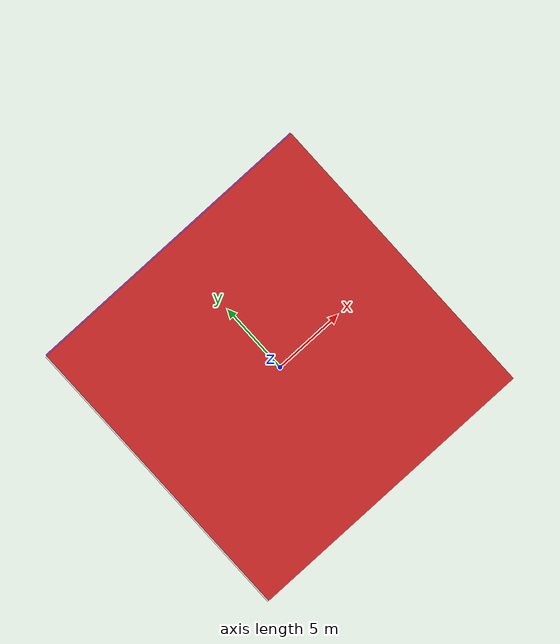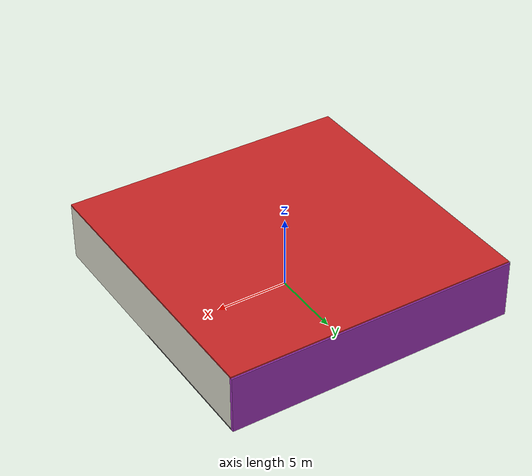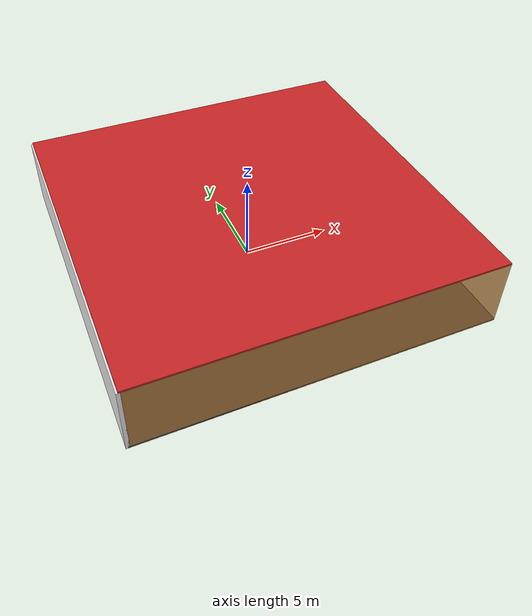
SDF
<sdf version="1.4">
 <world name="default">
  <physics type="ode">
   <max_step_size>0.001</max_step_size>
   <real_time_factor>1</real_time_factor>
   <real_time_update_rate>1000</real_time_update_rate>
   <gravity>0 0 -9.8</gravity>
  </physics>
  <scene><ambient>0.4 0.4 0.4 1</ambient><background>0.7 0.7 0.7 1</background><shadows>1</shadows></scene>
  <model name="Surrounding">
   <static>1</static>
   <link name="Ceiling">
    <collision name="Ceiling_Collision"><geometry><box><size>20 20 0.1</size></box></geometry></collision>
    <visual name="Ceiling_Visual">
     <geometry><box><size>20 20 0.1</size></box></geometry>
     <material>
      <script><uri>file://media/materials/scripts/gazebo.material</uri><name>Gazebo/RedBright</name></script>
     </material>
    </visual>
    <pose>0 0 4.05 0 0 0</pose>
   </link>
   <link name="Wall_South">
    <collision name="Wall_South_Collision">
     <geometry><box><size>20 0 4</size></box></geometry>
     <pose>0 0 2 0 -0 0</pose>
    </collision>
    <visual name="Wall_South_Visual">
     <pose>0 0 2 0 -0 0</pose>
     <geometry><box><size>20 0 4</size></box></geometry>
     <material>
      <script>
       <uri>file://media/materials/scripts/gazebo.material</uri>
       <name>Gazebo/OrangeTransparent</name>
      </script>
     </material>
    </visual>
    <velocity_decay><linear>0</linear><angular>0</angular></velocity_decay>
    <pose>0 -10 0 0 -0 0</pose>
   </link>
   <link name="Wall_East">
    <collision name="Wall_21_Collision">
     <geometry><box><size>20 0 4</size></box></geometry>
     <pose>0 0 2 0 -0 0</pose>
    </collision>
    <visual name="Wall_21_Visual">
     <pose>0 0 2 0 -0 0</pose>
     <geometry><box><size>20 0 4</size></box></geometry>
     <material>
      <script><uri>file://media/materials/scripts/gazebo.material</uri><name>Gazebo/PaintedWall</name></script>
     </material>
    </visual>
    <velocity_decay><linear>0</linear><angular>0</angular></velocity_decay>
    <pose>10 0 0 0 -0 1.5708</pose>
   </link>
   <link name="Wall_North">
    <collision name="Wall_22_Collision">
     <geometry><box><size>20 0.2 4</size></box></geometry>
     <pose>0 0 2 0 -0 0</pose>
    </collision>
    <visual name="Wall_22_Visual">
     <pose>0 0 2 0 -0 0</pose>
     <geometry><box><size>20 0.2 4</size></box></geometry>
     <material>
      <script><uri>file://media/materials/scripts/gazebo.material</uri><name>Gazebo/Purple</name></script>
     </material>
    </visual>
    <velocity_decay><linear>0</linear><angular>0</angular></velocity_decay>
    <pose>0 10 0 0 -0 0</pose>
   </link>
   <link name="Wall_West">
    <collision name="Wall_23_Collision">
     <geometry><box><size>20 0.2 4</size></box></geometry>
     <pose>0 0 2 0 -0 0</pose>
    </collision>
    <visual name="Wall_23_Visual">
     <pose>0 0 2 0 -0 0</pose>
     <geometry><box><size>20 0.2 4</size></box></geometry>
     <material>
      <script><uri>file://media/materials/scripts/gazebo.material</uri><name>Gazebo/White</name></script>
     </material>
    </visual>
    <velocity_decay><linear>0</linear><angular>0</angular></velocity_decay>
    <pose>-10 0 0 0 0 -1.5708</pose>
   </link>
   <link name="Ground_link">
    <collision name="collision">
     <pose>0 0 .05 0 -0 0</pose>
     <geometry><box><size>20 20 0.1</size></box></geometry>
    </collision>
    <visual name="visual">
     <pose>0 0 .05 0 -0 0</pose>
     <geometry><box><size>20 20 0.1</size></box></geometry>
     <material>
      <script><uri>file://media/materials/scripts/gazebo.material</uri><name>Gazebo/DarkGrey</name></script>
     </material>
    </visual>
   </link>
   <static>1</static>
  </model>
  <spherical_coordinates>
   <surface_model>EARTH_WGS84</surface_model>
   <latitude_deg>0</latitude_deg>
   <longitude_deg>0</longitude_deg>
   <elevation>0</elevation>
   <heading_deg>0</heading_deg>
  </spherical_coordinates>
  <light name="lightball_0" type="diffuse">
   <diffuse>0.8 0.8 0.8 1</diffuse>
   <specular>0.2 0.2 0.2 1</specular>
   <attenuation>
    <range>100</range>
    <constant>0.7</constant>
    <linear>0.01</linear>
    <quadratic>0.001</quadratic>
   </attenuation>
   <direction>-0.5 0.1 -0.9</direction>
   <pose>-9.16285434121 -9.0895815584 2.36860289026 0 0 0</pose>
  </light>
  <light name="lightball_1" type="diffuse">
   <diffuse>0.8 0.8 0.8 1</diffuse>
   <specular>0.2 0.2 0.2 1</specular>
   <attenuation>
    <range>100</range>
    <constant>0.7</constant>
    <linear>0.01</linear>
    <quadratic>0.001</quadratic>
   </attenuation>
   <direction>-0.5 0.1 -0.9</direction>
   <pose>6.13870791163 -3.69742155114 2.09159032625 0 0 0</pose>
  </light>
  <light name="lightball_2" type="diffuse">
   <diffuse>0.8 0.8 0.8 1</diffuse>
   <specular>0.2 0.2 0.2 1</specular>
   <attenuation>
    <range>100</range>
    <constant>0.7</constant>
    <linear>0.01</linear>
    <quadratic>0.001</quadratic>
   </attenuation>
   <direction>-0.5 0.1 -0.9</direction>
   <pose>8.72894829727 2.40491247227 1.30167994849 0 0 0</pose>
  </light>
  <light name="lightball_3" type="diffuse">
   <diffuse>0.8 0.8 0.8 1</diffuse>
   <specular>0.2 0.2 0.2 1</specular>
   <attenuation>
    <range>100</range>
    <constant>0.7</constant>
    <linear>0.01</linear>
    <quadratic>0.001</quadratic>
   </attenuation>
   <direction>-0.5 0.1 -0.9</direction>
   <pose>-9.88940310592 9.77881982277 0.852539894397 0 0 0</pose>
  </light>
  <light name="lightball_4" type="diffuse">
   <diffuse>0.8 0.8 0.8 1</diffuse>
   <specular>0.2 0.2 0.2 1</specular>
   <attenuation>
    <range>100</range>
    <constant>0.7</constant>
    <linear>0.01</linear>
    <quadratic>0.001</quadratic>
   </attenuation>
   <direction>-0.5 0.1 -0.9</direction>
   <pose>6.06868569275 -5.1615377861 2.21173114211 0 0 0</pose>
  </light>
  <light name="lightball_5" type="diffuse">
   <diffuse>0.8 0.8 0.8 1</diffuse>
   <specular>0.2 0.2 0.2 1</specular>
   <attenuation>
    <range>100</range>
    <constant>0.7</constant>
    <linear>0.01</linear>
    <quadratic>0.001</quadratic>
   </attenuation>
   <direction>-0.5 0.1 -0.9</direction>
   <pose>6.71428040617 -5.02278844899 3.44482134468 0 0 0</pose>
  </light>
  <light name="lightball_6" type="diffuse">
   <diffuse>0.8 0.8 0.8 1</diffuse>
   <specular>0.2 0.2 0.2 1</specular>
   <attenuation>
    <range>100</range>
    <constant>0.7</constant>
    <linear>0.01</linear>
    <quadratic>0.001</quadratic>
   </attenuation>
   <direction>-0.5 0.1 -0.9</direction>
   <pose>2.77001319892 -8.0215077229 1.56528639456 0 0 0</pose>
  </light>
  <light name="lightball_7" type="diffuse">
   <diffuse>0.8 0.8 0.8 1</diffuse>
   <specular>0.2 0.2 0.2 1</specular>
   <attenuation>
    <range>100</range>
    <constant>0.7</constant>
    <linear>0.01</linear>
    <quadratic>0.001</quadratic>
   </attenuation>
   <direction>-0.5 0.1 -0.9</direction>
   <pose>7.80776950172 5.36849751408 2.62302124107 0 0 0</pose>
  </light>
  <light name="lightball_8" type="diffuse">
   <diffuse>0.8 0.8 0.8 1</diffuse>
   <specular>0.2 0.2 0.2 1</specular>
   <attenuation>
    <range>100</range>
    <constant>0.7</constant>
    <linear>0.01</linear>
    <quadratic>0.001</quadratic>
   </attenuation>
   <direction>-0.5 0.1 -0.9</direction>
   <pose>3.22852272107 -6.81167428854 1.52780689258 0 0 0</pose>
  </light>
  <light name="lightball_9" type="diffuse">
   <diffuse>0.8 0.8 0.8 1</diffuse>
   <specular>0.2 0.2 0.2 1</specular>
   <attenuation>
    <range>100</range>
    <constant>0.7</constant>
    <linear>0.01</linear>
    <quadratic>0.001</quadratic>
   </attenuation>
   <direction>-0.5 0.1 -0.9</direction>
   <pose>0.46052266592 2.24406541347 3.42379276925 0 0 0</pose>
  </light>
  <light name="lightball_10" type="diffuse">
   <diffuse>0.8 0.8 0.8 1</diffuse>
   <specular>0.2 0.2 0.2 1</specular>
   <attenuation>
    <range>100</range>
    <constant>0.7</constant>
    <linear>0.01</linear>
    <quadratic>0.001</quadratic>
   </attenuation>
   <direction>-0.5 0.1 -0.9</direction>
   <pose>7.59696812038 4.48064729353 1.02245816441 0 0 0</pose>
  </light>
  <include><uri>model://cabinet</uri><pose>-8.00389118373 -6.68523945786 0 0 0 0.0978773390943</pose></include>
  <include><uri>model://cabinet</uri><pose>-4.60447243098 8.50575704079 0 0 0 2.34922651001</pose></include>
  <include><uri>model://cabinet</uri><pose>2.4375601008 1.04293827841 0 0 0 1.94777154823</pose></include>
  <include><uri>model://table</uri><pose>6.80413848325 8.38549768178 0 0 0 0.998644448284</pose></include>
 </world>
</sdf>

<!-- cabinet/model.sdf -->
<sdf version="1.5">
  <model name="cabinet">
    <static>true</static>
    <link name="cabinet_bottom_plate">
      <inertial>
        <pose>0 0 -1 0 0 0</pose>
        <inertia>
          <ixx>2.050000</ixx>
          <ixy>0</ixy>
          <ixz>0</ixz>
          <iyy>2.050000</iyy>
          <iyz>0</iyz>
          <izz>2.050000</izz>
        </inertia>
        <mass>25.000000</mass>
      </inertial>
      <collision name="cabinet_bottom_plate_geom">
        <pose>0 0 0.010000 0 0 0</pose>
        <geometry>
          <box>
            <size>0.450000 0.450000 0.020000</size>
          </box>
        </geometry>
      </collision>
      <visual name="cabinet_bottom_plate_geom_visual">
        <pose>0 0 0.010000 0 0 0</pose>
        <geometry>
          <box>
            <size>0.450000 0.450000 0.020000</size>
          </box>
        </geometry>
        <material>
          <script>
            <uri>model://media/materials/scripts/gazebo.material</uri>
            <name>Gazebo/Wood</name>
          </script>
        </material>
      </visual>
      <collision name="cabinet_bottom_plate_geom_cabinet_back_plate">
        <pose>0.235000 0 0.510000 0 0 0</pose>
        <geometry>
          <box>
            <size>0.020000 0.450000 1.020000</size>
          </box>
        </geometry>
      </collision>
      <visual name="cabinet_bottom_plate_geom_cabinet_back_plate_visual">
        <pose>0.235000 0 0.510000 0 0 0</pose>
        <geometry>
          <box>
            <size>0.020000 0.450000 1.020000</size>
          </box>
        </geometry>
        <material>
          <script>
            <uri>model://media/materials/scripts/gazebo.material</uri>
            <name>Gazebo/Wood</name>
          </script>
        </material>
      </visual>
      <collision name="cabinet_bottom_plate_geom_cabinet_left_plate">
        <pose>0 0.235000 0.510000 0 0 0</pose>
        <geometry>
          <box>
            <size>0.450000 0.020000 1.020000</size>
          </box>
        </geometry>
      </collision>
      <visual name="cabinet_bottom_plate_geom_cabinet_left_plate_visual">
        <pose>0 0.235000 0.510000 0 0 0</pose>
        <geometry>
          <box>
            <size>0.450000 0.020000 1.020000</size>
          </box>
        </geometry>
        <material>
          <script>
            <uri>model://media/materials/scripts/gazebo.material</uri>
            <name>Gazebo/Wood</name>
          </script>
        </material>
      </visual>
      <collision name="cabinet_bottom_plate_geom_cabinet_middle_plate">
        <pose>0 0 0.510000 0 0 0</pose>
        <geometry>
          <box>
            <size>0.450000 0.450000 0.020000</size>
          </box>
        </geometry>
      </collision>
      <visual name="cabinet_bottom_plate_geom_cabinet_middle_plate_visual">
        <pose>0 0 0.510000 0 0 0</pose>
        <geometry>
          <box>
            <size>0.450000 0.450000 0.020000</size>
          </box>
        </geometry>
        <material>
          <script>
            <uri>model://media/materials/scripts/gazebo.material</uri>
            <name>Gazebo/Wood</name>
          </script>
        </material>
      </visual>
      <collision name="cabinet_bottom_plate_geom_cabinet_right_plate">
        <pose>0 -0.235000 0.510000 0 0 0</pose>
        <geometry>
          <box>
            <size>0.450000 0.020000 1.020000</size>
          </box>
        </geometry>
      </collision>
      <visual name="cabinet_bottom_plate_geom_cabinet_right_plate_visual">
        <pose>0 -0.235000 0.510000 0 0 0</pose>
        <geometry>
          <box>
            <size>0.450000 0.020000 1.020000</size>
          </box>
        </geometry>
        <material>
          <script>
            <uri>model://media/materials/scripts/gazebo.material</uri>
            <name>Gazebo/Wood</name>
          </script>
        </material>
      </visual>
      <collision name="cabinet_bottom_plate_geom_cabinet_top_plate">
        <pose>0 0 1.010000 0 0 0</pose>
        <geometry>
          <box>
            <size>0.450000 0.450000 0.020000</size>
          </box>
        </geometry>
      </collision>
      <visual name="cabinet_bottom_plate_geom_cabinet_top_plate_visual">
        <pose>0 0 1.010000 0 0 0</pose>
        <geometry>
          <box>
            <size>0.450000 0.450000 0.020000</size>
          </box>
        </geometry>
        <material>
          <script>
            <uri>model://media/materials/scripts/gazebo.material</uri>
            <name>Gazebo/Wood</name>
          </script>
        </material>
      </visual>
    </link>
  </model>
</sdf>

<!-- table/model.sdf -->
<sdf version="1.5">
  <model name="table">
    <static>true</static>
    <link name="link">
      <collision name="surface">
        <pose>0 0 1.0 0 0 0</pose>
        <geometry>
          <box>
            <size>1.5 0.8 0.03</size>
          </box>
        </geometry>
        <surface>
          <friction>
            <ode>
              <mu>0.6</mu>
              <mu2>0.6</mu2>
            </ode>
          </friction>
        </surface>
      </collision>
      <visual name="visual1">
        <pose>0 0 1.0 0 0 0</pose>
        <geometry>
          <box>
            <size>1.5 0.8 0.03</size>
          </box>
        </geometry>
        <material>
          <script>
            <uri>model://media/materials/scripts/gazebo.material</uri>
            <name>Gazebo/Wood</name>
          </script>
        </material>
      </visual>
      <collision name="front_left_leg">
        <pose>0.68 0.38 0.5 0 0 0</pose>
        <geometry>
          <cylinder>
            <radius>0.02</radius>
            <length>1.0</length>
          </cylinder>
        </geometry>
      </collision>
      <visual name="front_left_leg">
        <pose>0.68 0.38 0.5 0 0 0</pose>
        <geometry>
          <cylinder>
            <radius>0.02</radius>
            <length>1.0</length>
          </cylinder>
        </geometry>
        <material>
          <script>
            <uri>model://media/materials/scripts/gazebo.material</uri>
            <name>Gazebo/Grey</name>
          </script>
        </material>
      </visual>
      <collision name="front_right_leg">
        <pose>0.68 -0.38 0.5 0 0 0</pose>
        <geometry>
          <cylinder>
            <radius>0.02</radius>
            <length>1.0</length>
          </cylinder>
        </geometry>
      </collision>
      <visual name="front_right_leg">
        <pose>0.68 -0.38 0.5 0 0 0</pose>
        <geometry>
          <cylinder>
            <radius>0.02</radius>
            <length>1.0</length>
          </cylinder>
        </geometry>
        <material>
          <script>
            <uri>model://media/materials/scripts/gazebo.material</uri>
            <name>Gazebo/Grey</name>
          </script>
        </material>
      </visual>
      <collision name="back_right_leg">
        <pose>-0.68 -0.38 0.5 0 0 0</pose>
        <geometry>
          <cylinder>
            <radius>0.02</radius>
            <length>1.0</length>
          </cylinder>
        </geometry>
      </collision>
      <visual name="back_right_leg">
        <pose>-0.68 -0.38 0.5 0 0 0</pose>
        <geometry>
          <cylinder>
            <radius>0.02</radius>
            <length>1.0</length>
          </cylinder>
        </geometry>
        <material>
          <script>
            <uri>model://media/materials/scripts/gazebo.material</uri>
            <name>Gazebo/Grey</name>
          </script>
        </material>
      </visual>
      <collision name="back_left_leg">
        <pose>-0.68 0.38 0.5 0 0 0</pose>
        <geometry>
          <cylinder>
            <radius>0.02</radius>
            <length>1.0</length>
          </cylinder>
        </geometry>
      </collision>
      <visual name="back_left_leg">
        <pose>-0.68 0.38 0.5 0 0 0</pose>
        <geometry>
          <cylinder>
            <radius>0.02</radius>
            <length>1.0</length>
          </cylinder>
        </geometry>
        <material>
          <script>
            <uri>model://media/materials/scripts/gazebo.material</uri>
            <name>Gazebo/Grey</name>
          </script>
        </material>
      </visual>
    </link>
  </model>
</sdf>
